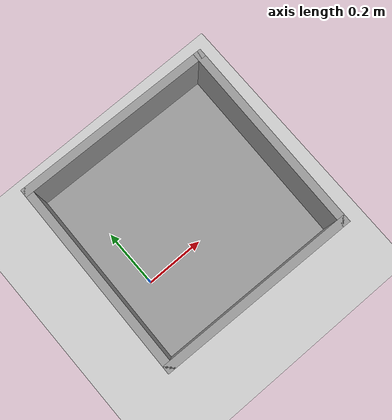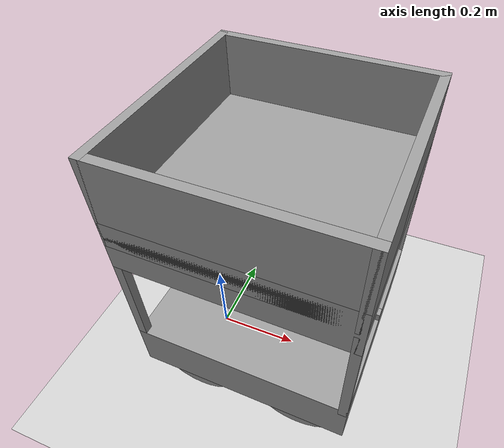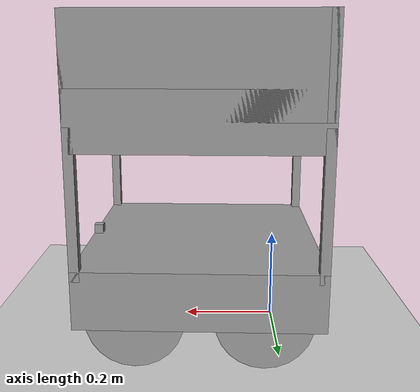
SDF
<sdf version="1.6">
 <world name="default">
  <light name="sun" type="directional">
   <pose>0 0 10 0 -0 0</pose>
   <diffuse>0.8 0.8 0.8 1</diffuse>
   <specular>0.2 0.2 0.2 1</specular>
   <attenuation>
    <range>1000</range>
    <constant>0.9</constant>
    <linear>0.01</linear>
    <quadratic>0.001</quadratic>
   </attenuation>
   <direction>-0.5 0.1 -0.9</direction>
  </light>
  <model name="ground_plane">
   <static>1</static>
   <link name="link">
    <collision name="collision">
     <geometry><plane><normal>0 0 1</normal><size>100 100</size></plane></geometry>
     <surface>
      <contact><collide_bitmask>65535</collide_bitmask></contact>
      <friction><ode><mu>100</mu><mu2>50</mu2></ode></friction>
     </surface>
    </collision>
    <visual name="visual">
     <cast_shadows>0</cast_shadows>
     <geometry><plane><normal>0 0 1</normal><size>100 100</size></plane></geometry>
     <material>
      <script><uri>file://media/materials/scripts/gazebo.material</uri><name>Gazebo/Grey</name></script>
     </material>
    </visual>
   </link>
  </model>
  <gravity>0 0 -9.8</gravity>
  <magnetic_field>6e-06 2.3e-05 -4.2e-05</magnetic_field>
  <atmosphere type="adiabatic"/>
  <physics name="default_physics" default="0" type="ode">
   <max_step_size>0.001</max_step_size>
   <real_time_factor>1</real_time_factor>
   <real_time_update_rate>1000</real_time_update_rate>
  </physics>
  <scene><ambient>0.4 0.4 0.4 1</ambient><background>0.7 0.7 0.7 1</background><shadows>1</shadows></scene>
  <audio><device>default</device></audio>
  <spherical_coordinates>
   <surface_model>EARTH_WGS84</surface_model>
   <latitude_deg>0</latitude_deg>
   <longitude_deg>0</longitude_deg>
   <elevation>0</elevation>
   <heading_deg>0</heading_deg>
  </spherical_coordinates>
  <model name="cart">
   <link name="link_0">
    <inertial>
     <mass>1</mass>
     <inertia>
      <ixx>0.166667</ixx>
      <ixy>0</ixy>
      <ixz>0</ixz>
      <iyy>0.166667</iyy>
      <iyz>0</iyz>
      <izz>0.166667</izz>
     </inertia>
    </inertial>
    <pose>-0.016 0 -0.185333 0 -0 0</pose>
    <visual name="visual">
     <geometry><box><size>0.5 0.5 0.12</size></box></geometry>
     <material>
      <lighting>1</lighting>
      <script><uri>file://media/materials/scripts/gazebo.material</uri><name>Gazebo/Grey</name></script>
      <shader type="vertex"><normal_map>__default__</normal_map></shader>
      <ambient>0.3 0.3 0.3 1</ambient>
      <diffuse>0.7 0.7 0.7 1</diffuse>
      <specular>0.01 0.01 0.01 1</specular>
      <emissive>0 0 0 1</emissive>
     </material>
    </visual>
    <collision name="collision">
     <geometry><box><size>0.5 0.5 0.12</size></box></geometry>
     <surface>
      <friction>
       <ode><mu>1</mu><mu2>1</mu2><fdir1>0 0 0</fdir1><slip1>0</slip1><slip2>0</slip2></ode>
       <torsional>
        <coefficient>1</coefficient>
        <patch_radius>0</patch_radius>
        <surface_radius>0</surface_radius>
        <use_patch_radius>1</use_patch_radius>
        <ode><slip>0</slip></ode>
       </torsional>
      </friction>
      <bounce><restitution_coefficient>0</restitution_coefficient><threshold>1e+06</threshold></bounce>
      <contact>
       <collide_without_contact>0</collide_without_contact>
       <collide_without_contact_bitmask>1</collide_without_contact_bitmask>
       <collide_bitmask>1</collide_bitmask>
       <ode>
        <soft_cfm>0</soft_cfm>
        <soft_erp>0.2</soft_erp>
        <kp>1e+13</kp>
        <kd>1</kd>
        <max_vel>0.01</max_vel>
        <min_depth>0</min_depth>
       </ode>
       <bullet>
        <split_impulse>1</split_impulse>
        <split_impulse_penetration_threshold>-0.01</split_impulse_penetration_threshold>
        <soft_cfm>0</soft_cfm>
        <soft_erp>0.2</soft_erp>
        <kp>1e+13</kp>
        <kd>1</kd>
       </bullet>
      </contact>
     </surface>
    </collision>
   </link>
   <link name="base_footprint">
    <inertial>
     <inertia><ixx>1</ixx><ixy>0</ixy><ixz>0</ixz><iyy>1</iyy><iyz>0</iyz><izz>1</izz></inertia>
     <mass>1</mass>
    </inertial>
   </link>
   <joint name="base_footprint_joint" type="fixed"><parent>__default__</parent><child>__default__</child></joint>
   <link name="link_1">
    <inertial>
     <mass>1</mass>
     <inertia><ixx>0.145833</ixx><ixy>0</ixy><ixz>0</ixz><iyy>0.145833</iyy><iyz>0</iyz><izz>0.125</izz></inertia>
    </inertial>
    <pose>0.114 0.2 -0.235333 1.5708 -0 0</pose>
    <visual name="visual">
     <geometry><cylinder><radius>0.1</radius><length>0.05</length></cylinder></geometry>
     <material>
      <lighting>1</lighting>
      <script><uri>file://media/materials/scripts/gazebo.material</uri><name>Gazebo/Grey</name></script>
      <shader type="vertex"><normal_map>__default__</normal_map></shader>
      <ambient>0.3 0.3 0.3 1</ambient>
      <diffuse>0.7 0.7 0.7 1</diffuse>
      <specular>0.01 0.01 0.01 1</specular>
      <emissive>0 0 0 1</emissive>
     </material>
    </visual>
    <collision name="collision">
     <geometry><cylinder><radius>0.1</radius><length>0.05</length></cylinder></geometry>
     <surface>
      <friction>
       <ode><mu>1</mu><mu2>1</mu2><fdir1>0 0 0</fdir1><slip1>0</slip1><slip2>0</slip2></ode>
       <torsional>
        <coefficient>1</coefficient>
        <patch_radius>0</patch_radius>
        <surface_radius>0</surface_radius>
        <use_patch_radius>1</use_patch_radius>
        <ode><slip>0</slip></ode>
       </torsional>
      </friction>
      <bounce><restitution_coefficient>0</restitution_coefficient><threshold>1e+06</threshold></bounce>
      <contact>
       <collide_without_contact>0</collide_without_contact>
       <collide_without_contact_bitmask>1</collide_without_contact_bitmask>
       <collide_bitmask>1</collide_bitmask>
       <ode>
        <soft_cfm>0</soft_cfm>
        <soft_erp>0.2</soft_erp>
        <kp>1e+13</kp>
        <kd>1</kd>
        <max_vel>0.01</max_vel>
        <min_depth>0</min_depth>
       </ode>
       <bullet>
        <split_impulse>1</split_impulse>
        <split_impulse_penetration_threshold>-0.01</split_impulse_penetration_threshold>
        <soft_cfm>0</soft_cfm>
        <soft_erp>0.2</soft_erp>
        <kp>1e+13</kp>
        <kd>1</kd>
       </bullet>
      </contact>
     </surface>
    </collision>
   </link>
   <link name="link_1_clone">
    <inertial>
     <mass>1</mass>
     <inertia><ixx>0.145833</ixx><ixy>0</ixy><ixz>0</ixz><iyy>0.145833</iyy><iyz>0</iyz><izz>0.125</izz></inertia>
    </inertial>
    <pose>0.114 -0.2 -0.235333 1.5708 -0 0</pose>
    <visual name="visual">
     <geometry><cylinder><radius>0.1</radius><length>0.05</length></cylinder></geometry>
     <material>
      <lighting>1</lighting>
      <script><uri>file://media/materials/scripts/gazebo.material</uri><name>Gazebo/Grey</name></script>
      <shader type="vertex"><normal_map>__default__</normal_map></shader>
      <ambient>0.3 0.3 0.3 1</ambient>
      <diffuse>0.7 0.7 0.7 1</diffuse>
      <specular>0.01 0.01 0.01 1</specular>
      <emissive>0 0 0 1</emissive>
     </material>
    </visual>
    <collision name="collision">
     <geometry><cylinder><radius>0.1</radius><length>0.05</length></cylinder></geometry>
     <surface>
      <friction>
       <ode><mu>1</mu><mu2>1</mu2><fdir1>0 0 0</fdir1><slip1>0</slip1><slip2>0</slip2></ode>
       <torsional>
        <coefficient>1</coefficient>
        <patch_radius>0</patch_radius>
        <surface_radius>0</surface_radius>
        <use_patch_radius>1</use_patch_radius>
        <ode><slip>0</slip></ode>
       </torsional>
      </friction>
      <bounce><restitution_coefficient>0</restitution_coefficient><threshold>1e+06</threshold></bounce>
      <contact>
       <collide_without_contact>0</collide_without_contact>
       <collide_without_contact_bitmask>1</collide_without_contact_bitmask>
       <collide_bitmask>1</collide_bitmask>
       <ode>
        <soft_cfm>0</soft_cfm>
        <soft_erp>0.2</soft_erp>
        <kp>1e+13</kp>
        <kd>1</kd>
        <max_vel>0.01</max_vel>
        <min_depth>0</min_depth>
       </ode>
       <bullet>
        <split_impulse>1</split_impulse>
        <split_impulse_penetration_threshold>-0.01</split_impulse_penetration_threshold>
        <soft_cfm>0</soft_cfm>
        <soft_erp>0.2</soft_erp>
        <kp>1e+13</kp>
        <kd>1</kd>
       </bullet>
      </contact>
     </surface>
    </collision>
   </link>
   <link name="link_1_clone_0">
    <inertial>
     <mass>1</mass>
     <inertia><ixx>0.145833</ixx><ixy>0</ixy><ixz>0</ixz><iyy>0.145833</iyy><iyz>0</iyz><izz>0.125</izz></inertia>
    </inertial>
    <pose>-0.146 0.2 -0.235333 1.5708 -0 0</pose>
    <visual name="visual">
     <geometry><cylinder><radius>0.1</radius><length>0.05</length></cylinder></geometry>
     <material>
      <lighting>1</lighting>
      <script><uri>file://media/materials/scripts/gazebo.material</uri><name>Gazebo/Grey</name></script>
      <shader type="vertex"><normal_map>__default__</normal_map></shader>
      <ambient>0.3 0.3 0.3 1</ambient>
      <diffuse>0.7 0.7 0.7 1</diffuse>
      <specular>0.01 0.01 0.01 1</specular>
      <emissive>0 0 0 1</emissive>
     </material>
    </visual>
    <collision name="collision">
     <geometry><cylinder><radius>0.1</radius><length>0.05</length></cylinder></geometry>
     <surface>
      <friction>
       <ode><mu>1</mu><mu2>1</mu2><fdir1>0 0 0</fdir1><slip1>0</slip1><slip2>0</slip2></ode>
       <torsional>
        <coefficient>1</coefficient>
        <patch_radius>0</patch_radius>
        <surface_radius>0</surface_radius>
        <use_patch_radius>1</use_patch_radius>
        <ode><slip>0</slip></ode>
       </torsional>
      </friction>
      <bounce><restitution_coefficient>0</restitution_coefficient><threshold>1e+06</threshold></bounce>
      <contact>
       <collide_without_contact>0</collide_without_contact>
       <collide_without_contact_bitmask>1</collide_without_contact_bitmask>
       <collide_bitmask>1</collide_bitmask>
       <ode>
        <soft_cfm>0</soft_cfm>
        <soft_erp>0.2</soft_erp>
        <kp>1e+13</kp>
        <kd>1</kd>
        <max_vel>0.01</max_vel>
        <min_depth>0</min_depth>
       </ode>
       <bullet>
        <split_impulse>1</split_impulse>
        <split_impulse_penetration_threshold>-0.01</split_impulse_penetration_threshold>
        <soft_cfm>0</soft_cfm>
        <soft_erp>0.2</soft_erp>
        <kp>1e+13</kp>
        <kd>1</kd>
       </bullet>
      </contact>
     </surface>
    </collision>
   </link>
   <link name="link_1_clone_1">
    <inertial>
     <mass>1</mass>
     <inertia><ixx>0.145833</ixx><ixy>0</ixy><ixz>0</ixz><iyy>0.145833</iyy><iyz>0</iyz><izz>0.125</izz></inertia>
    </inertial>
    <pose>-0.146 -0.2 -0.235333 1.5708 -0 0</pose>
    <visual name="visual">
     <geometry><cylinder><radius>0.1</radius><length>0.05</length></cylinder></geometry>
     <material>
      <lighting>1</lighting>
      <script><uri>file://media/materials/scripts/gazebo.material</uri><name>Gazebo/Grey</name></script>
      <shader type="vertex"><normal_map>__default__</normal_map></shader>
      <ambient>0.3 0.3 0.3 1</ambient>
      <diffuse>0.7 0.7 0.7 1</diffuse>
      <specular>0.01 0.01 0.01 1</specular>
      <emissive>0 0 0 1</emissive>
     </material>
    </visual>
    <collision name="collision">
     <geometry><cylinder><radius>0.1</radius><length>0.05</length></cylinder></geometry>
     <surface>
      <friction>
       <ode><mu>1</mu><mu2>1</mu2><fdir1>0 0 0</fdir1><slip1>0</slip1><slip2>0</slip2></ode>
       <torsional>
        <coefficient>1</coefficient>
        <patch_radius>0</patch_radius>
        <surface_radius>0</surface_radius>
        <use_patch_radius>1</use_patch_radius>
        <ode><slip>0</slip></ode>
       </torsional>
      </friction>
      <bounce><restitution_coefficient>0</restitution_coefficient><threshold>1e+06</threshold></bounce>
      <contact>
       <collide_without_contact>0</collide_without_contact>
       <collide_without_contact_bitmask>1</collide_without_contact_bitmask>
       <collide_bitmask>1</collide_bitmask>
       <ode>
        <soft_cfm>0</soft_cfm>
        <soft_erp>0.2</soft_erp>
        <kp>1e+13</kp>
        <kd>1</kd>
        <max_vel>0.01</max_vel>
        <min_depth>0</min_depth>
       </ode>
       <bullet>
        <split_impulse>1</split_impulse>
        <split_impulse_penetration_threshold>-0.01</split_impulse_penetration_threshold>
        <soft_cfm>0</soft_cfm>
        <soft_erp>0.2</soft_erp>
        <kp>1e+13</kp>
        <kd>1</kd>
       </bullet>
      </contact>
     </surface>
    </collision>
   </link>
   <link name="link_2">
    <inertial>
     <mass>1</mass>
     <inertia>
      <ixx>0.166667</ixx>
      <ixy>0</ixy>
      <ixz>0</ixz>
      <iyy>0.166667</iyy>
      <iyz>0</iyz>
      <izz>0.166667</izz>
     </inertia>
    </inertial>
    <pose>-0.016 0 0.164667 0 -0 0</pose>
    <visual name="visual">
     <geometry><box><size>0.5 0.5 0.12</size></box></geometry>
     <material>
      <lighting>1</lighting>
      <script><uri>file://media/materials/scripts/gazebo.material</uri><name>Gazebo/Grey</name></script>
      <shader type="vertex"><normal_map>__default__</normal_map></shader>
      <ambient>0.3 0.3 0.3 1</ambient>
      <diffuse>0.7 0.7 0.7 1</diffuse>
      <specular>0.01 0.01 0.01 1</specular>
      <emissive>0 0 0 1</emissive>
     </material>
    </visual>
    <collision name="collision">
     <geometry><box><size>0.5 0.5 0.12</size></box></geometry>
     <surface>
      <friction>
       <ode><mu>1</mu><mu2>1</mu2><fdir1>0 0 0</fdir1><slip1>0</slip1><slip2>0</slip2></ode>
       <torsional>
        <coefficient>1</coefficient>
        <patch_radius>0</patch_radius>
        <surface_radius>0</surface_radius>
        <use_patch_radius>1</use_patch_radius>
        <ode><slip>0</slip></ode>
       </torsional>
      </friction>
      <bounce><restitution_coefficient>0</restitution_coefficient><threshold>1e+06</threshold></bounce>
      <contact>
       <collide_without_contact>0</collide_without_contact>
       <collide_without_contact_bitmask>1</collide_without_contact_bitmask>
       <collide_bitmask>1</collide_bitmask>
       <ode>
        <soft_cfm>0</soft_cfm>
        <soft_erp>0.2</soft_erp>
        <kp>1e+13</kp>
        <kd>1</kd>
        <max_vel>0.01</max_vel>
        <min_depth>0</min_depth>
       </ode>
       <bullet>
        <split_impulse>1</split_impulse>
        <split_impulse_penetration_threshold>-0.01</split_impulse_penetration_threshold>
        <soft_cfm>0</soft_cfm>
        <soft_erp>0.2</soft_erp>
        <kp>1e+13</kp>
        <kd>1</kd>
       </bullet>
      </contact>
     </surface>
    </collision>
   </link>
   <link name="link_3">
    <inertial>
     <mass>1</mass>
     <inertia>
      <ixx>0.166667</ixx>
      <ixy>0</ixy>
      <ixz>0</ixz>
      <iyy>0.166667</iyy>
      <iyz>0</iyz>
      <izz>0.166667</izz>
     </inertia>
    </inertial>
    <pose>0.224 -0.24 0.004667 0 -0 0</pose>
    <visual name="visual">
     <geometry><box><size>0.02 0.02 0.3</size></box></geometry>
     <material>
      <lighting>1</lighting>
      <script><uri>file://media/materials/scripts/gazebo.material</uri><name>Gazebo/Grey</name></script>
      <shader type="vertex"><normal_map>__default__</normal_map></shader>
      <ambient>0.3 0.3 0.3 1</ambient>
      <diffuse>0.7 0.7 0.7 1</diffuse>
      <specular>0.01 0.01 0.01 1</specular>
      <emissive>0 0 0 1</emissive>
     </material>
    </visual>
    <collision name="collision">
     <geometry><box><size>0.02 0.02 0.3</size></box></geometry>
     <surface>
      <friction>
       <ode><mu>1</mu><mu2>1</mu2><fdir1>0 0 0</fdir1><slip1>0</slip1><slip2>0</slip2></ode>
       <torsional>
        <coefficient>1</coefficient>
        <patch_radius>0</patch_radius>
        <surface_radius>0</surface_radius>
        <use_patch_radius>1</use_patch_radius>
        <ode><slip>0</slip></ode>
       </torsional>
      </friction>
      <bounce><restitution_coefficient>0</restitution_coefficient><threshold>1e+06</threshold></bounce>
      <contact>
       <collide_without_contact>0</collide_without_contact>
       <collide_without_contact_bitmask>1</collide_without_contact_bitmask>
       <collide_bitmask>1</collide_bitmask>
       <ode>
        <soft_cfm>0</soft_cfm>
        <soft_erp>0.2</soft_erp>
        <kp>1e+13</kp>
        <kd>1</kd>
        <max_vel>0.01</max_vel>
        <min_depth>0</min_depth>
       </ode>
       <bullet>
        <split_impulse>1</split_impulse>
        <split_impulse_penetration_threshold>-0.01</split_impulse_penetration_threshold>
        <soft_cfm>0</soft_cfm>
        <soft_erp>0.2</soft_erp>
        <kp>1e+13</kp>
        <kd>1</kd>
       </bullet>
      </contact>
     </surface>
    </collision>
   </link>
   <link name="link_3_clone">
    <inertial>
     <mass>1</mass>
     <inertia>
      <ixx>0.166667</ixx>
      <ixy>0</ixy>
      <ixz>0</ixz>
      <iyy>0.166667</iyy>
      <iyz>0</iyz>
      <izz>0.166667</izz>
     </inertia>
    </inertial>
    <pose>0.224 0.24 0.004667 0 -0 0</pose>
    <visual name="visual">
     <geometry><box><size>0.02 0.02 0.3</size></box></geometry>
     <material>
      <lighting>1</lighting>
      <script><uri>file://media/materials/scripts/gazebo.material</uri><name>Gazebo/Grey</name></script>
      <shader type="vertex"><normal_map>__default__</normal_map></shader>
      <ambient>0.3 0.3 0.3 1</ambient>
      <diffuse>0.7 0.7 0.7 1</diffuse>
      <specular>0.01 0.01 0.01 1</specular>
      <emissive>0 0 0 1</emissive>
     </material>
    </visual>
    <collision name="collision">
     <geometry><box><size>0.02 0.02 0.3</size></box></geometry>
     <surface>
      <friction>
       <ode><mu>1</mu><mu2>1</mu2><fdir1>0 0 0</fdir1><slip1>0</slip1><slip2>0</slip2></ode>
       <torsional>
        <coefficient>1</coefficient>
        <patch_radius>0</patch_radius>
        <surface_radius>0</surface_radius>
        <use_patch_radius>1</use_patch_radius>
        <ode><slip>0</slip></ode>
       </torsional>
      </friction>
      <bounce><restitution_coefficient>0</restitution_coefficient><threshold>1e+06</threshold></bounce>
      <contact>
       <collide_without_contact>0</collide_without_contact>
       <collide_without_contact_bitmask>1</collide_without_contact_bitmask>
       <collide_bitmask>1</collide_bitmask>
       <ode>
        <soft_cfm>0</soft_cfm>
        <soft_erp>0.2</soft_erp>
        <kp>1e+13</kp>
        <kd>1</kd>
        <max_vel>0.01</max_vel>
        <min_depth>0</min_depth>
       </ode>
       <bullet>
        <split_impulse>1</split_impulse>
        <split_impulse_penetration_threshold>-0.01</split_impulse_penetration_threshold>
        <soft_cfm>0</soft_cfm>
        <soft_erp>0.2</soft_erp>
        <kp>1e+13</kp>
        <kd>1</kd>
       </bullet>
      </contact>
     </surface>
    </collision>
   </link>
   <link name="link_3_clone_0">
    <inertial>
     <mass>1</mass>
     <inertia>
      <ixx>0.166667</ixx>
      <ixy>0</ixy>
      <ixz>0</ixz>
      <iyy>0.166667</iyy>
      <iyz>0</iyz>
      <izz>0.166667</izz>
     </inertia>
    </inertial>
    <pose>-0.256 0.24 0.004667 0 -0 0</pose>
    <visual name="visual">
     <geometry><box><size>0.02 0.02 0.3</size></box></geometry>
     <material>
      <lighting>1</lighting>
      <script><uri>file://media/materials/scripts/gazebo.material</uri><name>Gazebo/Grey</name></script>
      <shader type="vertex"><normal_map>__default__</normal_map></shader>
      <ambient>0.3 0.3 0.3 1</ambient>
      <diffuse>0.7 0.7 0.7 1</diffuse>
      <specular>0.01 0.01 0.01 1</specular>
      <emissive>0 0 0 1</emissive>
     </material>
    </visual>
    <collision name="collision">
     <geometry><box><size>0.02 0.02 0.3</size></box></geometry>
     <surface>
      <friction>
       <ode><mu>1</mu><mu2>1</mu2><fdir1>0 0 0</fdir1><slip1>0</slip1><slip2>0</slip2></ode>
       <torsional>
        <coefficient>1</coefficient>
        <patch_radius>0</patch_radius>
        <surface_radius>0</surface_radius>
        <use_patch_radius>1</use_patch_radius>
        <ode><slip>0</slip></ode>
       </torsional>
      </friction>
      <bounce><restitution_coefficient>0</restitution_coefficient><threshold>1e+06</threshold></bounce>
      <contact>
       <collide_without_contact>0</collide_without_contact>
       <collide_without_contact_bitmask>1</collide_without_contact_bitmask>
       <collide_bitmask>1</collide_bitmask>
       <ode>
        <soft_cfm>0</soft_cfm>
        <soft_erp>0.2</soft_erp>
        <kp>1e+13</kp>
        <kd>1</kd>
        <max_vel>0.01</max_vel>
        <min_depth>0</min_depth>
       </ode>
       <bullet>
        <split_impulse>1</split_impulse>
        <split_impulse_penetration_threshold>-0.01</split_impulse_penetration_threshold>
        <soft_cfm>0</soft_cfm>
        <soft_erp>0.2</soft_erp>
        <kp>1e+13</kp>
        <kd>1</kd>
       </bullet>
      </contact>
     </surface>
    </collision>
   </link>
   <link name="link_3_clone_1">
    <inertial>
     <mass>1</mass>
     <inertia>
      <ixx>0.166667</ixx>
      <ixy>0</ixy>
      <ixz>0</ixz>
      <iyy>0.166667</iyy>
      <iyz>0</iyz>
      <izz>0.166667</izz>
     </inertia>
    </inertial>
    <pose>-0.256 -0.24 0.004667 0 -0 0</pose>
    <visual name="visual">
     <geometry><box><size>0.02 0.02 0.3</size></box></geometry>
     <material>
      <lighting>1</lighting>
      <script><uri>file://media/materials/scripts/gazebo.material</uri><name>Gazebo/Grey</name></script>
      <shader type="vertex"><normal_map>__default__</normal_map></shader>
      <ambient>0.3 0.3 0.3 1</ambient>
      <diffuse>0.7 0.7 0.7 1</diffuse>
      <specular>0.01 0.01 0.01 1</specular>
      <emissive>0 0 0 1</emissive>
     </material>
    </visual>
    <collision name="collision">
     <geometry><box><size>0.02 0.02 0.3</size></box></geometry>
     <surface>
      <friction>
       <ode><mu>1</mu><mu2>1</mu2><fdir1>0 0 0</fdir1><slip1>0</slip1><slip2>0</slip2></ode>
       <torsional>
        <coefficient>1</coefficient>
        <patch_radius>0</patch_radius>
        <surface_radius>0</surface_radius>
        <use_patch_radius>1</use_patch_radius>
        <ode><slip>0</slip></ode>
       </torsional>
      </friction>
      <bounce><restitution_coefficient>0</restitution_coefficient><threshold>1e+06</threshold></bounce>
      <contact>
       <collide_without_contact>0</collide_without_contact>
       <collide_without_contact_bitmask>1</collide_without_contact_bitmask>
       <collide_bitmask>1</collide_bitmask>
       <ode>
        <soft_cfm>0</soft_cfm>
        <soft_erp>0.2</soft_erp>
        <kp>1e+13</kp>
        <kd>1</kd>
        <max_vel>0.01</max_vel>
        <min_depth>0</min_depth>
       </ode>
       <bullet>
        <split_impulse>1</split_impulse>
        <split_impulse_penetration_threshold>-0.01</split_impulse_penetration_threshold>
        <soft_cfm>0</soft_cfm>
        <soft_erp>0.2</soft_erp>
        <kp>1e+13</kp>
        <kd>1</kd>
       </bullet>
      </contact>
     </surface>
    </collision>
   </link>
   <link name="link_4">
    <inertial>
     <mass>1</mass>
     <inertia>
      <ixx>0.166667</ixx>
      <ixy>0</ixy>
      <ixz>0</ixz>
      <iyy>0.166667</iyy>
      <iyz>0</iyz>
      <izz>0.166667</izz>
     </inertia>
    </inertial>
    <pose>-0.016 0.24 0.264667 0 -0 0</pose>
    <visual name="visual">
     <geometry><box><size>0.5 0.02 0.2</size></box></geometry>
     <material>
      <lighting>1</lighting>
      <script><uri>file://media/materials/scripts/gazebo.material</uri><name>Gazebo/Grey</name></script>
      <shader type="vertex"><normal_map>__default__</normal_map></shader>
      <ambient>0.3 0.3 0.3 1</ambient>
      <diffuse>0.7 0.7 0.7 1</diffuse>
      <specular>0.01 0.01 0.01 1</specular>
      <emissive>0 0 0 1</emissive>
     </material>
    </visual>
    <collision name="collision">
     <geometry><box><size>0.5 0.02 0.2</size></box></geometry>
     <surface>
      <friction>
       <ode><mu>1</mu><mu2>1</mu2><fdir1>0 0 0</fdir1><slip1>0</slip1><slip2>0</slip2></ode>
       <torsional>
        <coefficient>1</coefficient>
        <patch_radius>0</patch_radius>
        <surface_radius>0</surface_radius>
        <use_patch_radius>1</use_patch_radius>
        <ode><slip>0</slip></ode>
       </torsional>
      </friction>
      <bounce><restitution_coefficient>0</restitution_coefficient><threshold>1e+06</threshold></bounce>
      <contact>
       <collide_without_contact>0</collide_without_contact>
       <collide_without_contact_bitmask>1</collide_without_contact_bitmask>
       <collide_bitmask>1</collide_bitmask>
       <ode>
        <soft_cfm>0</soft_cfm>
        <soft_erp>0.2</soft_erp>
        <kp>1e+13</kp>
        <kd>1</kd>
        <max_vel>0.01</max_vel>
        <min_depth>0</min_depth>
       </ode>
       <bullet>
        <split_impulse>1</split_impulse>
        <split_impulse_penetration_threshold>-0.01</split_impulse_penetration_threshold>
        <soft_cfm>0</soft_cfm>
        <soft_erp>0.2</soft_erp>
        <kp>1e+13</kp>
        <kd>1</kd>
       </bullet>
      </contact>
     </surface>
    </collision>
   </link>
   <link name="link_4_clone">
    <inertial>
     <mass>1</mass>
     <inertia>
      <ixx>0.166667</ixx>
      <ixy>0</ixy>
      <ixz>0</ixz>
      <iyy>0.166667</iyy>
      <iyz>0</iyz>
      <izz>0.166667</izz>
     </inertia>
    </inertial>
    <pose>-0.016 -0.24 0.264667 0 -0 0</pose>
    <visual name="visual">
     <geometry><box><size>0.5 0.02 0.2</size></box></geometry>
     <material>
      <lighting>1</lighting>
      <script><uri>file://media/materials/scripts/gazebo.material</uri><name>Gazebo/Grey</name></script>
      <shader type="vertex"><normal_map>__default__</normal_map></shader>
      <ambient>0.3 0.3 0.3 1</ambient>
      <diffuse>0.7 0.7 0.7 1</diffuse>
      <specular>0.01 0.01 0.01 1</specular>
      <emissive>0 0 0 1</emissive>
     </material>
    </visual>
    <collision name="collision">
     <geometry><box><size>0.5 0.02 0.2</size></box></geometry>
     <surface>
      <friction>
       <ode><mu>1</mu><mu2>1</mu2><fdir1>0 0 0</fdir1><slip1>0</slip1><slip2>0</slip2></ode>
       <torsional>
        <coefficient>1</coefficient>
        <patch_radius>0</patch_radius>
        <surface_radius>0</surface_radius>
        <use_patch_radius>1</use_patch_radius>
        <ode><slip>0</slip></ode>
       </torsional>
      </friction>
      <bounce><restitution_coefficient>0</restitution_coefficient><threshold>1e+06</threshold></bounce>
      <contact>
       <collide_without_contact>0</collide_without_contact>
       <collide_without_contact_bitmask>1</collide_without_contact_bitmask>
       <collide_bitmask>1</collide_bitmask>
       <ode>
        <soft_cfm>0</soft_cfm>
        <soft_erp>0.2</soft_erp>
        <kp>1e+13</kp>
        <kd>1</kd>
        <max_vel>0.01</max_vel>
        <min_depth>0</min_depth>
       </ode>
       <bullet>
        <split_impulse>1</split_impulse>
        <split_impulse_penetration_threshold>-0.01</split_impulse_penetration_threshold>
        <soft_cfm>0</soft_cfm>
        <soft_erp>0.2</soft_erp>
        <kp>1e+13</kp>
        <kd>1</kd>
       </bullet>
      </contact>
     </surface>
    </collision>
   </link>
   <link name="link_4_clone_clone">
    <inertial>
     <mass>1</mass>
     <inertia>
      <ixx>0.166667</ixx>
      <ixy>0</ixy>
      <ixz>0</ixz>
      <iyy>0.166667</iyy>
      <iyz>0</iyz>
      <izz>0.166667</izz>
     </inertia>
    </inertial>
    <pose>0.224 0 0.264667 0 -0 1.5708</pose>
    <visual name="visual">
     <geometry><box><size>0.5 0.02 0.2</size></box></geometry>
     <material>
      <lighting>1</lighting>
      <script><uri>file://media/materials/scripts/gazebo.material</uri><name>Gazebo/Grey</name></script>
      <shader type="vertex"><normal_map>__default__</normal_map></shader>
      <ambient>0.3 0.3 0.3 1</ambient>
      <diffuse>0.7 0.7 0.7 1</diffuse>
      <specular>0.01 0.01 0.01 1</specular>
      <emissive>0 0 0 1</emissive>
     </material>
    </visual>
    <collision name="collision">
     <geometry><box><size>0.5 0.02 0.2</size></box></geometry>
     <surface>
      <friction>
       <ode><mu>1</mu><mu2>1</mu2><fdir1>0 0 0</fdir1><slip1>0</slip1><slip2>0</slip2></ode>
       <torsional>
        <coefficient>1</coefficient>
        <patch_radius>0</patch_radius>
        <surface_radius>0</surface_radius>
        <use_patch_radius>1</use_patch_radius>
        <ode><slip>0</slip></ode>
       </torsional>
      </friction>
      <bounce><restitution_coefficient>0</restitution_coefficient><threshold>1e+06</threshold></bounce>
      <contact>
       <collide_without_contact>0</collide_without_contact>
       <collide_without_contact_bitmask>1</collide_without_contact_bitmask>
       <collide_bitmask>1</collide_bitmask>
       <ode>
        <soft_cfm>0</soft_cfm>
        <soft_erp>0.2</soft_erp>
        <kp>1e+13</kp>
        <kd>1</kd>
        <max_vel>0.01</max_vel>
        <min_depth>0</min_depth>
       </ode>
       <bullet>
        <split_impulse>1</split_impulse>
        <split_impulse_penetration_threshold>-0.01</split_impulse_penetration_threshold>
        <soft_cfm>0</soft_cfm>
        <soft_erp>0.2</soft_erp>
        <kp>1e+13</kp>
        <kd>1</kd>
       </bullet>
      </contact>
     </surface>
    </collision>
   </link>
   <link name="link_4_clone_clone_clone">
    <inertial>
     <mass>1</mass>
     <inertia>
      <ixx>0.166667</ixx>
      <ixy>0</ixy>
      <ixz>0</ixz>
      <iyy>0.166667</iyy>
      <iyz>0</iyz>
      <izz>0.166667</izz>
     </inertia>
    </inertial>
    <pose>-0.256 0 0.264667 0 -0 1.5708</pose>
    <visual name="visual">
     <geometry><box><size>0.5 0.02 0.2</size></box></geometry>
     <material>
      <lighting>1</lighting>
      <script><uri>file://media/materials/scripts/gazebo.material</uri><name>Gazebo/Grey</name></script>
      <shader type="vertex"><normal_map>__default__</normal_map></shader>
      <ambient>0.3 0.3 0.3 1</ambient>
      <diffuse>0.7 0.7 0.7 1</diffuse>
      <specular>0.01 0.01 0.01 1</specular>
      <emissive>0 0 0 1</emissive>
     </material>
    </visual>
    <collision name="collision">
     <geometry><box><size>0.5 0.02 0.2</size></box></geometry>
     <surface>
      <friction>
       <ode><mu>1</mu><mu2>1</mu2><fdir1>0 0 0</fdir1><slip1>0</slip1><slip2>0</slip2></ode>
       <torsional>
        <coefficient>1</coefficient>
        <patch_radius>0</patch_radius>
        <surface_radius>0</surface_radius>
        <use_patch_radius>1</use_patch_radius>
        <ode><slip>0</slip></ode>
       </torsional>
      </friction>
      <bounce><restitution_coefficient>0</restitution_coefficient><threshold>1e+06</threshold></bounce>
      <contact>
       <collide_without_contact>0</collide_without_contact>
       <collide_without_contact_bitmask>1</collide_without_contact_bitmask>
       <collide_bitmask>1</collide_bitmask>
       <ode>
        <soft_cfm>0</soft_cfm>
        <soft_erp>0.2</soft_erp>
        <kp>1e+13</kp>
        <kd>1</kd>
        <max_vel>0.01</max_vel>
        <min_depth>0</min_depth>
       </ode>
       <bullet>
        <split_impulse>1</split_impulse>
        <split_impulse_penetration_threshold>-0.01</split_impulse_penetration_threshold>
        <soft_cfm>0</soft_cfm>
        <soft_erp>0.2</soft_erp>
        <kp>1e+13</kp>
        <kd>1</kd>
       </bullet>
      </contact>
     </surface>
    </collision>
   </link>
   <link name="link_5">
    <inertial>
     <mass>1</mass>
     <inertia>
      <ixx>0.166667</ixx>
      <ixy>0</ixy>
      <ixz>0</ixz>
      <iyy>0.166667</iyy>
      <iyz>0</iyz>
      <izz>0.166667</izz>
     </inertia>
    </inertial>
    <pose>0.224 0 -0.115333 0 -0 0</pose>
    <visual name="visual">
     <geometry><box><size>0.02 0.02 0.02</size></box></geometry>
     <material>
      <lighting>1</lighting>
      <script><uri>file://media/materials/scripts/gazebo.material</uri><name>Gazebo/Grey</name></script>
      <shader type="vertex"><normal_map>__default__</normal_map></shader>
      <ambient>0.3 0.3 0.3 1</ambient>
      <diffuse>0.7 0.7 0.7 1</diffuse>
      <specular>0.01 0.01 0.01 1</specular>
      <emissive>0 0 0 1</emissive>
     </material>
    </visual>
    <collision name="collision">
     <geometry><box><size>0.02 0.02 0.02</size></box></geometry>
     <surface>
      <friction>
       <ode><mu>1</mu><mu2>1</mu2><fdir1>0 0 0</fdir1><slip1>0</slip1><slip2>0</slip2></ode>
       <torsional>
        <coefficient>1</coefficient>
        <patch_radius>0</patch_radius>
        <surface_radius>0</surface_radius>
        <use_patch_radius>1</use_patch_radius>
        <ode><slip>0</slip></ode>
       </torsional>
      </friction>
      <bounce><restitution_coefficient>0</restitution_coefficient><threshold>1e+06</threshold></bounce>
      <contact>
       <collide_without_contact>0</collide_without_contact>
       <collide_without_contact_bitmask>1</collide_without_contact_bitmask>
       <collide_bitmask>1</collide_bitmask>
       <ode>
        <soft_cfm>0</soft_cfm>
        <soft_erp>0.2</soft_erp>
        <kp>1e+13</kp>
        <kd>1</kd>
        <max_vel>0.01</max_vel>
        <min_depth>0</min_depth>
       </ode>
       <bullet>
        <split_impulse>1</split_impulse>
        <split_impulse_penetration_threshold>-0.01</split_impulse_penetration_threshold>
        <soft_cfm>0</soft_cfm>
        <soft_erp>0.2</soft_erp>
        <kp>1e+13</kp>
        <kd>1</kd>
       </bullet>
      </contact>
     </surface>
    </collision>
   </link>
   <joint name="front_left_joint" type="revolute">
    <parent>link_0</parent>
    <child>link_1</child>
    <axis>
     <xyz>0 0 1</xyz>
     <use_parent_model_frame>0</use_parent_model_frame>
     <limit>
      <lower>-1.79769e+308</lower>
      <upper>1.79769e+308</upper>
      <effort>-1</effort>
      <velocity>-1</velocity>
     </limit>
     <dynamics>
      <spring_reference>0</spring_reference>
      <spring_stiffness>0</spring_stiffness>
      <damping>0</damping>
      <friction>0</friction>
     </dynamics>
    </axis>
    <physics>
     <ode><limit><cfm>0</cfm><erp>0.2</erp></limit><suspension><cfm>0</cfm><erp>0.2</erp></suspension></ode>
    </physics>
   </joint>
   <joint name="link_0_JOINT_13" type="fixed">
    <parent>link_0</parent>
    <child>link_5</child>
    <physics>
     <ode><limit><cfm>0</cfm><erp>0.2</erp></limit><suspension><cfm>0</cfm><erp>0.2</erp></suspension></ode>
    </physics>
   </joint>
   <joint name="front_right_joint" type="revolute">
    <parent>link_0</parent>
    <child>link_1_clone</child>
    <axis>
     <xyz>0 0 1</xyz>
     <use_parent_model_frame>0</use_parent_model_frame>
     <limit>
      <lower>-1.79769e+308</lower>
      <upper>1.79769e+308</upper>
      <effort>-1</effort>
      <velocity>-1</velocity>
     </limit>
     <dynamics>
      <spring_reference>0</spring_reference>
      <spring_stiffness>0</spring_stiffness>
      <damping>0</damping>
      <friction>0</friction>
     </dynamics>
    </axis>
    <physics>
     <ode><limit><cfm>0</cfm><erp>0.2</erp></limit><suspension><cfm>0</cfm><erp>0.2</erp></suspension></ode>
    </physics>
   </joint>
   <joint name="caster_back_left_joint" type="fixed">
    <parent>link_0</parent>
    <child>link_1_clone_0</child>
    <physics>
     <ode><limit><cfm>0</cfm><erp>0.2</erp></limit><suspension><cfm>0</cfm><erp>0.2</erp></suspension></ode>
    </physics>
   </joint>
   <joint name="caster_back_right" type="fixed">
    <parent>link_0</parent>
    <child>link_1_clone_1</child>
    <physics>
     <ode><limit><cfm>0</cfm><erp>0.2</erp></limit><suspension><cfm>0</cfm><erp>0.2</erp></suspension></ode>
    </physics>
   </joint>
   <joint name="link_0_JOINT_4" type="fixed">
    <parent>link_0</parent>
    <child>link_2</child>
    <physics>
     <ode><limit><cfm>0</cfm><erp>0.2</erp></limit><suspension><cfm>0</cfm><erp>0.2</erp></suspension></ode>
    </physics>
   </joint>
   <joint name="link_0_JOINT_5" type="fixed">
    <parent>link_0</parent>
    <child>link_3_clone_1</child>
    <physics>
     <ode><limit><cfm>0</cfm><erp>0.2</erp></limit><suspension><cfm>0</cfm><erp>0.2</erp></suspension></ode>
    </physics>
   </joint>
   <joint name="link_0_JOINT_6" type="fixed">
    <parent>link_0</parent>
    <child>link_3_clone_0</child>
    <physics>
     <ode><limit><cfm>0</cfm><erp>0.2</erp></limit><suspension><cfm>0</cfm><erp>0.2</erp></suspension></ode>
    </physics>
   </joint>
   <joint name="link_0_JOINT_7" type="fixed">
    <parent>link_0</parent>
    <child>link_3</child>
    <physics>
     <ode><limit><cfm>0</cfm><erp>0.2</erp></limit><suspension><cfm>0</cfm><erp>0.2</erp></suspension></ode>
    </physics>
   </joint>
   <joint name="link_0_JOINT_8" type="fixed">
    <parent>link_0</parent>
    <child>link_3_clone</child>
    <physics>
     <ode><limit><cfm>0</cfm><erp>0.2</erp></limit><suspension><cfm>0</cfm><erp>0.2</erp></suspension></ode>
    </physics>
   </joint>
   <joint name="link_0_JOINT_10" type="fixed">
    <parent>link_0</parent>
    <child>link_4_clone_clone</child>
    <physics>
     <ode><limit><cfm>0</cfm><erp>0.2</erp></limit><suspension><cfm>0</cfm><erp>0.2</erp></suspension></ode>
    </physics>
   </joint>
   <joint name="link_0_JOINT_11" type="fixed">
    <parent>link_0</parent>
    <child>link_4</child>
    <physics>
     <ode><limit><cfm>0</cfm><erp>0.2</erp></limit><suspension><cfm>0</cfm><erp>0.2</erp></suspension></ode>
    </physics>
   </joint>
   <joint name="link_0_clone_JOINT_9" type="fixed">
    <parent>link_0</parent>
    <child>link_4_clone</child>
    <physics>
     <ode><limit><cfm>0</cfm><erp>0.2</erp></limit><suspension><cfm>0</cfm><erp>0.2</erp></suspension></ode>
    </physics>
   </joint>
   <joint name="link_4_clone_clone_clone_JOINT_12" type="fixed">
    <parent>link_0</parent>
    <child>link_4_clone_clone_clone</child>
    <physics>
     <ode><limit><cfm>0</cfm><erp>0.2</erp></limit><suspension><cfm>0</cfm><erp>0.2</erp></suspension></ode>
    </physics>
   </joint>
   <static>0</static>
   <pose>0.177536 0.0236 0.335335 -3e-06 1.7e-05 -0.016088</pose>
  </model>
 </world>
</sdf>
